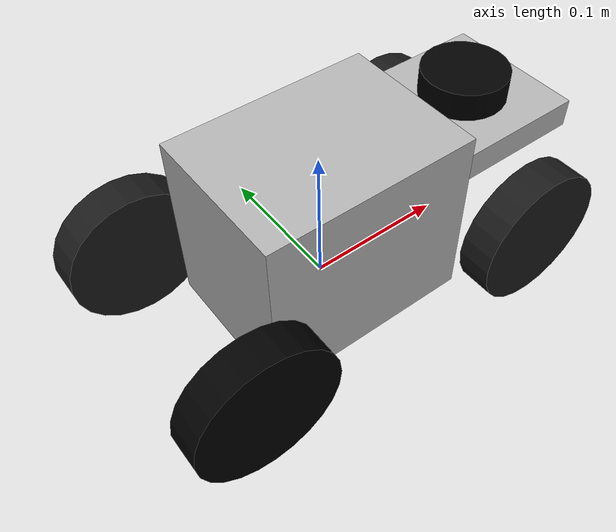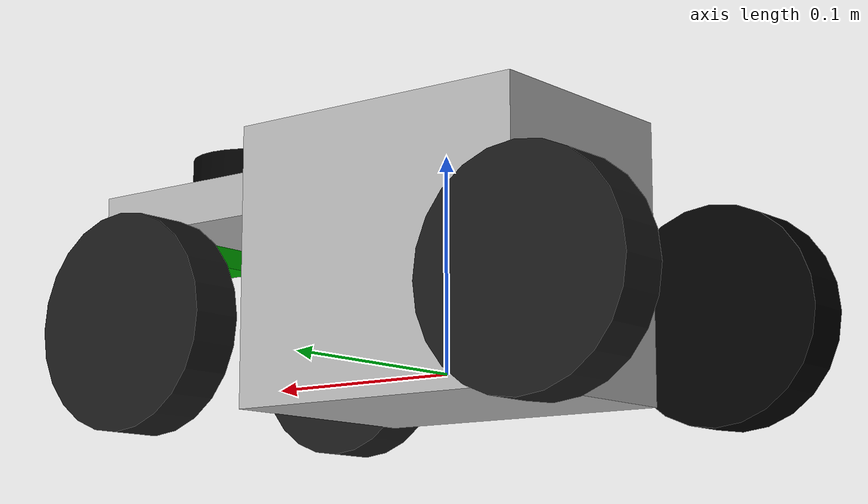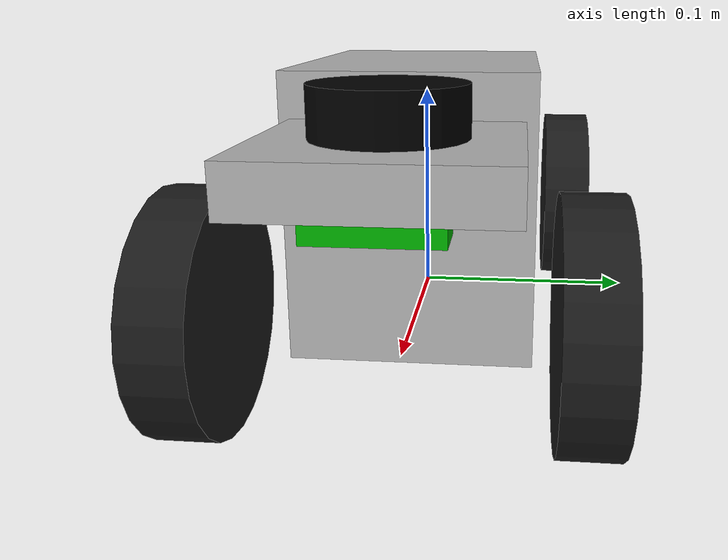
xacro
<?xml version="1.0"?>
<robot name="my_robot" xmlns:xacro="http://www.ros.org/wiki/xacro">
    <material name="grey">
        <color rgba="0.7 0.7 0.7 1" />
    </material>

    <material name="blue">
        <color rgba="0 0.7 0 1" />
    </material>

    <material name="white">
        <color rgba="1 1 1 1" />
    </material>

    <material name="black">
        <color rgba="0 0 0 1"/>
    </material>

    <material name="wheel_color">
        <color rgba="0.1 0.1 0.1 1.0"/>
    </material>

    <material name="steering_color">
        <color rgba="0.5 0.5 0.5 1.0"/>
    </material>
    <link name="base_footprint">
        <visual>
            <geometry>
                <box size="0.001 0.001 0.001"/>
            </geometry>
        </visual>
    </link>
    <link name="base_link">
        <visual>
            <geometry>
                <box size="0.15 0.11 0.13" />
            </geometry>
            <origin xyz="0 0 0" rpy="0 0 0" />
            <material name="grey" />
        </visual>
        <collision>
            <geometry>
                <box size="0.3 0.2 0.05"/>
            </geometry>
        </collision>
        <inertial>
            <mass value="2.0"/>
            <inertia ixx="0.01" ixy="0" ixz="0" iyy="0.01" iyz="0" izz="0.01"/>
        </inertial>
    </link>
    <joint name="base_footprint_joint" type="fixed">
        <parent link="base_footprint"/>
        <child link="base_link"/>
        <origin xyz="0 0 0.05" rpy="0 0 0"/>
    </joint>
    <link name="left_rear_wheel_link">
        <visual>
            <geometry>
                <cylinder radius="0.05" length="0.025"/>
            </geometry>
            <material name="wheel_color"/>
        </visual>
        <collision>
            <geometry>
                <cylinder radius="0.05" length="0.025"/>
            </geometry>
        </collision>
        <inertial>
            <mass value="0.5"/>
            <inertia ixx="0.001" ixy="0" ixz="0" iyy="0.001" iyz="0" izz="0.001"/>
        </inertial>
    </link>
    <joint name="left_rear_wheel_joint" type="continuous">
        <parent link="base_link"/>
        <child link="left_rear_wheel_link"/>
        <origin xyz="-0.1 0.075 -0.025" rpy="1.5708 0 0"/>
        <axis xyz="0 0 1"/>
    </joint>
    <link name="right_rear_wheel_link">
        <visual>
            <geometry>
                <cylinder radius="0.05" length="0.025"/>
            </geometry>
            <material name="black"/>
        </visual>
        <collision>
            <geometry>
                <cylinder radius="0.05" length="0.025"/>
            </geometry>
        </collision>
        <inertial>
            <mass value="0.5"/>
            <inertia ixx="0.001" ixy="0" ixz="0" iyy="0.001" iyz="0" izz="0.001"/>
        </inertial>
    </link>
    <joint name="right_rear_wheel_joint" type="continuous">
        <parent link="base_link"/>
        <child link="right_rear_wheel_link"/>
        <origin xyz="-0.1 -0.075 -0.025" rpy="1.5708 0 0"/>
        <axis xyz="0 0 -1"/>
    </joint>
    <link name="ultrasonic_sensor">
        <visual>
            <geometry>
                <box size="0.02 0.05 0.02"/>
            </geometry>
            <material name="blue"/>
        </visual>
        <collision>
            <geometry>
                <box size="0.02 0.05 0.02"/>
            </geometry>
        </collision>
        <inertial>
            <mass value="0.1"/>
            <inertia ixx="0.0001" ixy="0" ixz="0" iyy="0.0001" iyz="0" izz="0.0001"/>
        </inertial>
    </link>
    <joint name="ultrasonic_joint" type="fixed">
        <parent link="base_link"/>
        <child link="ultrasonic_sensor"/>
        <origin xyz="0.15 0 0.025" rpy="0 0 0"/>
    </joint>
    <link name="imu">
        <visual>
            <geometry>
                <box size="0.02 0.02 0.01"/>
            </geometry>
            <material name="blue"/>
        </visual>
        <collision>
            <geometry>
                <box size="0.02 0.02 0.01"/>
            </geometry>
        </collision>
        <inertial>
            <mass value="0.05"/>
            <inertia ixx="0.00001" ixy="0" ixz="0" iyy="0.00001" iyz="0" izz="0.00001"/>
        </inertial>
    </link>
    <joint name="imu_joint" type="fixed">
        <parent link="base_link"/>
        <child link="imu"/>
        <origin xyz="0 0 0.03" rpy="0 0 0"/>
    </joint>
    <link name="lidar_base">
        <visual>
            <geometry>
                <box size="0.1 0.1 0.02"/>
            </geometry>
            <material name="grey"/>
        </visual>
        <collision>
            <geometry>
                <box size="0.1 0.1 0.02"/>
            </geometry>
        </collision>
        <inertial>
            <mass value="0.3"/>
            <inertia ixx="0.0005" ixy="0" ixz="0" iyy="0.0005" iyz="0" izz="0.0005"/>
        </inertial>
    </link>
    <joint name="lidar_base_joint" type="fixed">
        <parent link="base_link"/>
        <child link="lidar_base"/>
        <origin xyz="0.12 0 0.035" rpy="0 0 0"/>
    </joint>
    <link name="laser">
        <visual>
            <geometry>
                <cylinder radius="0.03" length="0.02"/>
            </geometry>
            <material name="black"/>
        </visual>
        <collision>
            <geometry>
                <cylinder radius="0.03" length="0.02"/>
            </geometry>
        </collision>
        <inertial>
            <mass value="0.2"/>
            <inertia ixx="0.0001" ixy="0" ixz="0" iyy="0.0001" iyz="0" izz="0.0001"/>
        </inertial>
    </link>

    <joint name="lidar_joint" type="fixed">
        <parent link="lidar_base"/>
        <child link="laser"/>
        <origin xyz="0 0 0.02" rpy="0 0 0"/>
    </joint>
    <link name="steering_control">
        <visual>
            <geometry>
                <box size="0.03 0.03 0.02"/>
            </geometry>
            <material name="steering_color"/>
        </visual>
        <collision>
            <geometry>
                <box size="0.03 0.03 0.02"/>
            </geometry>
        </collision>
        <inertial>
            <mass value="0.2"/>
            <inertia ixx="0.0001" ixy="0" ixz="0" iyy="0.0001" iyz="0" izz="0.0001"/>
        </inertial>
    </link>
    <joint name="steering_control_joint" type="revolute">
        <parent link="base_link"/>
        <child link="steering_control"/>
        <origin xyz="0.08 0 0.02" rpy="0 0 0"/>
        <axis xyz="0 0 1"/>
        <limit lower="-0.5" upper="0.5" effort="10" velocity="1.0"/>
    </joint>
    <link name="front_left_pivot">
        <visual>
            <geometry>
                <sphere radius="0.01"/>
            </geometry>
            <material name="steering_color"/>
        </visual>
        <inertial>
            <mass value="0.1"/>
            <inertia ixx="0.00001" ixy="0" ixz="0" iyy="0.00001" iyz="0" izz="0.00001"/>
        </inertial>
    </link>
    <joint name="front_left_pivot_joint" type="revolute">
        <parent link="base_link"/>
        <child link="front_left_pivot"/>
        <origin xyz="0.12 0.075 -0.025" rpy="0 0 0"/>
        <axis xyz="0 0 1"/>
        <limit lower="-0.5" upper="0.5" effort="10" velocity="1.0"/>
        <mimic joint="steering_control_joint" multiplier="1.0" offset="0"/>
    </joint>
    <link name="front_left_wheel_link">
        <visual>
            <geometry>
                <cylinder radius="0.05" length="0.025"/>
            </geometry>
            <material name="wheel_color"/>
        </visual>
        <collision>
            <geometry>
                <cylinder radius="0.05" length="0.025"/>
            </geometry>
        </collision>
        <inertial>
            <mass value="0.5"/>
            <inertia ixx="0.001" ixy="0" ixz="0" iyy="0.001" iyz="0" izz="0.001"/>
        </inertial>
    </link>
    <joint name="front_left_wheel_joint" type="continuous">
        <parent link="front_left_pivot"/>
        <child link="front_left_wheel_link"/>
        <origin xyz="0 0 0" rpy="1.5708 0 0"/>
        <axis xyz="0 0 1"/>
    </joint>
    <link name="front_right_pivot">
        <visual>
            <geometry>
                <sphere radius="0.01"/>
            </geometry>
            <material name="steering_color"/>
        </visual>
        <inertial>
            <mass value="0.1"/>
            <inertia ixx="0.00001" ixy="0" ixz="0" iyy="0.00001" iyz="0" izz="0.00001"/>
        </inertial>
    </link>
    <joint name="front_right_pivot_joint" type="revolute">
        <parent link="base_link"/>
        <child link="front_right_pivot"/>
        <origin xyz="0.12 -0.075 -0.025" rpy="0 0 0"/>
        <axis xyz="0 0 1"/>
        <limit lower="-0.5" upper="0.5" effort="10" velocity="1.0"/>
        <mimic joint="steering_control_joint" multiplier="1.0" offset="0"/>
    </joint>
    <link name="front_right_wheel_link">
        <visual>
            <geometry>
                <cylinder radius="0.05" length="0.025"/>
            </geometry>
            <material name="wheel_color"/>
        </visual>
        <collision>
            <geometry>
                <cylinder radius="0.05" length="0.025"/>
            </geometry>
        </collision>
        <inertial>
            <mass value="0.5"/>
            <inertia ixx="0.001" ixy="0" ixz="0" iyy="0.001" iyz="0" izz="0.001"/>
        </inertial>
    </link>
    <joint name="front_right_wheel_joint" type="continuous">
        <parent link="front_right_pivot"/>
        <child link="front_right_wheel_link"/>
        <origin xyz="0 0 0" rpy="1.5708 0 0"/>
        <axis xyz="0 0 -1"/>
    </joint>

    <!-- Include Gazebo-specific components -->
    <xacro:include filename="$(find my_robot_description)/urdf/my_robot.gazebo"/>
</robot>
